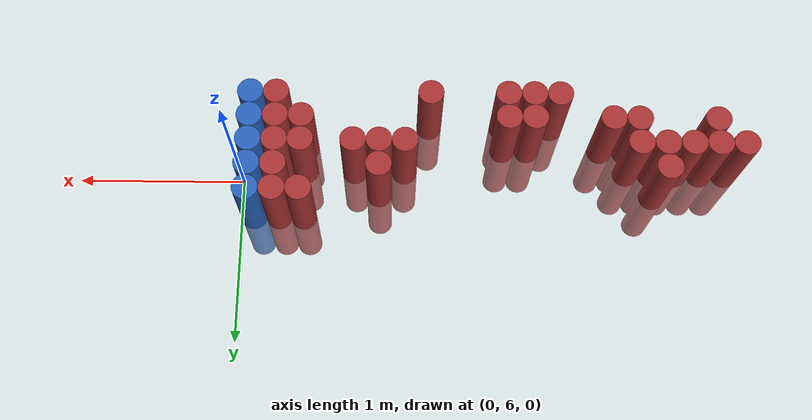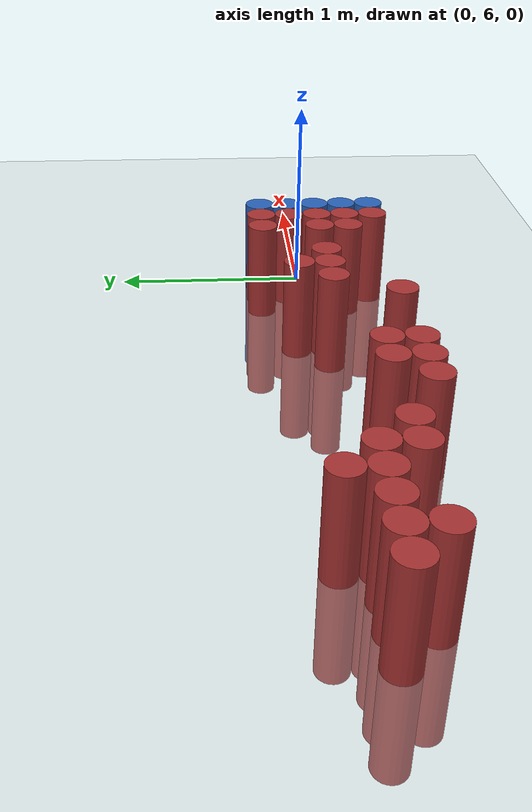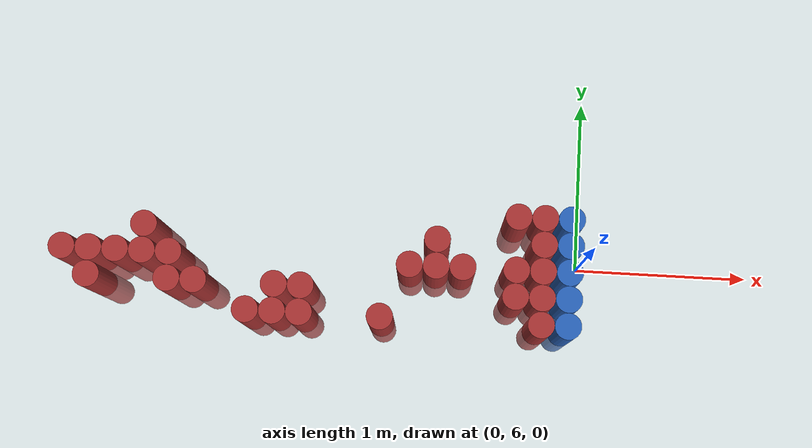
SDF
<sdf version="1.6">
 <world name="default">
  <model name="ground_plane">
   <static>1</static>
   <link name="link">
    <collision name="collision">
     <geometry><plane><normal>0 0 1</normal><size>100 100</size></plane></geometry>
     <surface><friction><ode><mu>100</mu><mu2>50</mu2></ode></friction></surface>
    </collision>
    <visual name="visual">
     <cast_shadows>0</cast_shadows>
     <geometry><plane><normal>0 0 1</normal><size>100 100</size></plane></geometry>
     <material>
      <script><uri>file://media/materials/scripts/gazebo.material</uri><name>Gazebo/Grey</name></script>
     </material>
    </visual>
   </link>
  </model>
  <model name="unit_cylinder_157">
   <static>1</static>
   <pose>-2.925000 5.925000 0.000000 0.000000 0.000000 0.000000</pose>
   <link name="link">
    <inertial>
     <mass>1</mass>
     <inertia><ixx>0.145833</ixx><ixy>0</ixy><ixz>0</ixz><iyy>0.145833</iyy><iyz>0</iyz><izz>0.125</izz></inertia>
    </inertial>
    <collision name="collision">
     <geometry><cylinder><radius>0.075000</radius><length>1</length></cylinder></geometry>
    </collision>
    <visual name="visual">
     <geometry><cylinder><radius>0.075000</radius><length>1</length></cylinder></geometry>
     <material>
      <ambient>0.648000 0.192000 0.192000 1</ambient>
      <diffuse>0.648000 0.192000 0.192000 1</diffuse>
     </material>
     <material>
      <script><name>Gazebo/Grey</name><uri>file://media/materials/scripts/gazebo.material</uri></script>
     </material>
    </visual>
    <sensor name="sensor_contact" type="contact"><contact><collision>collision</collision></contact></sensor>
   </link>
   <plugin filename="gz-sim-touchplugin-system" name="gz::sim::systems::TouchPlugin">
    <target>robot</target>
    <namespace>robot</namespace>
    <time>0.001</time>
    <enabled>true</enabled>
   </plugin>
  </model>
  <model name="unit_cylinder_160">
   <static>1</static>
   <pose>-2.775000 5.775000 0.000000 0.000000 0.000000 0.000000</pose>
   <link name="link">
    <inertial>
     <mass>1</mass>
     <inertia><ixx>0.145833</ixx><ixy>0</ixy><ixz>0</ixz><iyy>0.145833</iyy><iyz>0</iyz><izz>0.125</izz></inertia>
    </inertial>
    <collision name="collision">
     <geometry><cylinder><radius>0.075000</radius><length>1</length></cylinder></geometry>
    </collision>
    <visual name="visual">
     <geometry><cylinder><radius>0.075000</radius><length>1</length></cylinder></geometry>
     <material>
      <ambient>0.648000 0.192000 0.192000 1</ambient>
      <diffuse>0.648000 0.192000 0.192000 1</diffuse>
     </material>
     <material>
      <script><name>Gazebo/Grey</name><uri>file://media/materials/scripts/gazebo.material</uri></script>
     </material>
    </visual>
    <sensor name="sensor_contact" type="contact"><contact><collision>collision</collision></contact></sensor>
   </link>
   <plugin filename="gz-sim-touchplugin-system" name="gz::sim::systems::TouchPlugin">
    <target>robot</target>
    <namespace>robot</namespace>
    <time>0.001</time>
    <enabled>true</enabled>
   </plugin>
  </model>
  <model name="unit_cylinder_161">
   <static>1</static>
   <pose>-2.775000 5.925000 0.000000 0.000000 0.000000 0.000000</pose>
   <link name="link">
    <inertial>
     <mass>1</mass>
     <inertia><ixx>0.145833</ixx><ixy>0</ixy><ixz>0</ixz><iyy>0.145833</iyy><iyz>0</iyz><izz>0.125</izz></inertia>
    </inertial>
    <collision name="collision">
     <geometry><cylinder><radius>0.075000</radius><length>1</length></cylinder></geometry>
    </collision>
    <visual name="visual">
     <geometry><cylinder><radius>0.075000</radius><length>1</length></cylinder></geometry>
     <material>
      <ambient>0.648000 0.192000 0.192000 1</ambient>
      <diffuse>0.648000 0.192000 0.192000 1</diffuse>
     </material>
     <material>
      <script><name>Gazebo/Grey</name><uri>file://media/materials/scripts/gazebo.material</uri></script>
     </material>
    </visual>
    <sensor name="sensor_contact" type="contact"><contact><collision>collision</collision></contact></sensor>
   </link>
   <plugin filename="gz-sim-touchplugin-system" name="gz::sim::systems::TouchPlugin">
    <target>robot</target>
    <namespace>robot</namespace>
    <time>0.001</time>
    <enabled>true</enabled>
   </plugin>
  </model>
  <model name="unit_cylinder_166">
   <static>1</static>
   <pose>-2.625000 5.925000 0.000000 0.000000 0.000000 0.000000</pose>
   <link name="link">
    <inertial>
     <mass>1</mass>
     <inertia><ixx>0.145833</ixx><ixy>0</ixy><ixz>0</ixz><iyy>0.145833</iyy><iyz>0</iyz><izz>0.125</izz></inertia>
    </inertial>
    <collision name="collision">
     <geometry><cylinder><radius>0.075000</radius><length>1</length></cylinder></geometry>
    </collision>
    <visual name="visual">
     <geometry><cylinder><radius>0.075000</radius><length>1</length></cylinder></geometry>
     <material>
      <ambient>0.648000 0.192000 0.192000 1</ambient>
      <diffuse>0.648000 0.192000 0.192000 1</diffuse>
     </material>
     <material>
      <script><name>Gazebo/Grey</name><uri>file://media/materials/scripts/gazebo.material</uri></script>
     </material>
    </visual>
    <sensor name="sensor_contact" type="contact"><contact><collision>collision</collision></contact></sensor>
   </link>
   <plugin filename="gz-sim-touchplugin-system" name="gz::sim::systems::TouchPlugin">
    <target>robot</target>
    <namespace>robot</namespace>
    <time>0.001</time>
    <enabled>true</enabled>
   </plugin>
  </model>
  <model name="unit_cylinder_172">
   <static>1</static>
   <pose>-2.475000 5.925000 0.000000 0.000000 0.000000 0.000000</pose>
   <link name="link">
    <inertial>
     <mass>1</mass>
     <inertia><ixx>0.145833</ixx><ixy>0</ixy><ixz>0</ixz><iyy>0.145833</iyy><iyz>0</iyz><izz>0.125</izz></inertia>
    </inertial>
    <collision name="collision">
     <geometry><cylinder><radius>0.075000</radius><length>1</length></cylinder></geometry>
    </collision>
    <visual name="visual">
     <geometry><cylinder><radius>0.075000</radius><length>1</length></cylinder></geometry>
     <material>
      <ambient>0.648000 0.192000 0.192000 1</ambient>
      <diffuse>0.648000 0.192000 0.192000 1</diffuse>
     </material>
     <material>
      <script><name>Gazebo/Grey</name><uri>file://media/materials/scripts/gazebo.material</uri></script>
     </material>
    </visual>
    <sensor name="sensor_contact" type="contact"><contact><collision>collision</collision></contact></sensor>
   </link>
   <plugin filename="gz-sim-touchplugin-system" name="gz::sim::systems::TouchPlugin">
    <target>robot</target>
    <namespace>robot</namespace>
    <time>0.001</time>
    <enabled>true</enabled>
   </plugin>
  </model>
  <model name="unit_cylinder_173">
   <static>1</static>
   <pose>-2.475000 6.075000 0.000000 0.000000 0.000000 0.000000</pose>
   <link name="link">
    <inertial>
     <mass>1</mass>
     <inertia><ixx>0.145833</ixx><ixy>0</ixy><ixz>0</ixz><iyy>0.145833</iyy><iyz>0</iyz><izz>0.125</izz></inertia>
    </inertial>
    <collision name="collision">
     <geometry><cylinder><radius>0.075000</radius><length>1</length></cylinder></geometry>
    </collision>
    <visual name="visual">
     <geometry><cylinder><radius>0.075000</radius><length>1</length></cylinder></geometry>
     <material>
      <ambient>0.648000 0.192000 0.192000 1</ambient>
      <diffuse>0.648000 0.192000 0.192000 1</diffuse>
     </material>
     <material>
      <script><name>Gazebo/Grey</name><uri>file://media/materials/scripts/gazebo.material</uri></script>
     </material>
    </visual>
    <sensor name="sensor_contact" type="contact"><contact><collision>collision</collision></contact></sensor>
   </link>
   <plugin filename="gz-sim-touchplugin-system" name="gz::sim::systems::TouchPlugin">
    <target>robot</target>
    <namespace>robot</namespace>
    <time>0.001</time>
    <enabled>true</enabled>
   </plugin>
  </model>
  <model name="unit_cylinder_179">
   <static>1</static>
   <pose>-2.325000 5.775000 0.000000 0.000000 0.000000 0.000000</pose>
   <link name="link">
    <inertial>
     <mass>1</mass>
     <inertia><ixx>0.145833</ixx><ixy>0</ixy><ixz>0</ixz><iyy>0.145833</iyy><iyz>0</iyz><izz>0.125</izz></inertia>
    </inertial>
    <collision name="collision">
     <geometry><cylinder><radius>0.075000</radius><length>1</length></cylinder></geometry>
    </collision>
    <visual name="visual">
     <geometry><cylinder><radius>0.075000</radius><length>1</length></cylinder></geometry>
     <material>
      <ambient>0.648000 0.192000 0.192000 1</ambient>
      <diffuse>0.648000 0.192000 0.192000 1</diffuse>
     </material>
     <material>
      <script><name>Gazebo/Grey</name><uri>file://media/materials/scripts/gazebo.material</uri></script>
     </material>
    </visual>
    <sensor name="sensor_contact" type="contact"><contact><collision>collision</collision></contact></sensor>
   </link>
   <plugin filename="gz-sim-touchplugin-system" name="gz::sim::systems::TouchPlugin">
    <target>robot</target>
    <namespace>robot</namespace>
    <time>0.001</time>
    <enabled>true</enabled>
   </plugin>
  </model>
  <model name="unit_cylinder_180">
   <static>1</static>
   <pose>-2.325000 5.925000 0.000000 0.000000 0.000000 0.000000</pose>
   <link name="link">
    <inertial>
     <mass>1</mass>
     <inertia><ixx>0.145833</ixx><ixy>0</ixy><ixz>0</ixz><iyy>0.145833</iyy><iyz>0</iyz><izz>0.125</izz></inertia>
    </inertial>
    <collision name="collision">
     <geometry><cylinder><radius>0.075000</radius><length>1</length></cylinder></geometry>
    </collision>
    <visual name="visual">
     <geometry><cylinder><radius>0.075000</radius><length>1</length></cylinder></geometry>
     <material>
      <ambient>0.648000 0.192000 0.192000 1</ambient>
      <diffuse>0.648000 0.192000 0.192000 1</diffuse>
     </material>
     <material>
      <script><name>Gazebo/Grey</name><uri>file://media/materials/scripts/gazebo.material</uri></script>
     </material>
    </visual>
    <sensor name="sensor_contact" type="contact"><contact><collision>collision</collision></contact></sensor>
   </link>
   <plugin filename="gz-sim-touchplugin-system" name="gz::sim::systems::TouchPlugin">
    <target>robot</target>
    <namespace>robot</namespace>
    <time>0.001</time>
    <enabled>true</enabled>
   </plugin>
  </model>
  <model name="unit_cylinder_184">
   <static>1</static>
   <pose>-2.175000 5.775000 0.000000 0.000000 0.000000 0.000000</pose>
   <link name="link">
    <inertial>
     <mass>1</mass>
     <inertia><ixx>0.145833</ixx><ixy>0</ixy><ixz>0</ixz><iyy>0.145833</iyy><iyz>0</iyz><izz>0.125</izz></inertia>
    </inertial>
    <collision name="collision">
     <geometry><cylinder><radius>0.075000</radius><length>1</length></cylinder></geometry>
    </collision>
    <visual name="visual">
     <geometry><cylinder><radius>0.075000</radius><length>1</length></cylinder></geometry>
     <material>
      <ambient>0.648000 0.192000 0.192000 1</ambient>
      <diffuse>0.648000 0.192000 0.192000 1</diffuse>
     </material>
     <material>
      <script><name>Gazebo/Grey</name><uri>file://media/materials/scripts/gazebo.material</uri></script>
     </material>
    </visual>
    <sensor name="sensor_contact" type="contact"><contact><collision>collision</collision></contact></sensor>
   </link>
   <plugin filename="gz-sim-touchplugin-system" name="gz::sim::systems::TouchPlugin">
    <target>robot</target>
    <namespace>robot</namespace>
    <time>0.001</time>
    <enabled>true</enabled>
   </plugin>
  </model>
  <model name="unit_cylinder_193">
   <static>1</static>
   <pose>-1.875000 5.625000 0.000000 0.000000 0.000000 0.000000</pose>
   <link name="link">
    <inertial>
     <mass>1</mass>
     <inertia><ixx>0.145833</ixx><ixy>0</ixy><ixz>0</ixz><iyy>0.145833</iyy><iyz>0</iyz><izz>0.125</izz></inertia>
    </inertial>
    <collision name="collision">
     <geometry><cylinder><radius>0.075000</radius><length>1</length></cylinder></geometry>
    </collision>
    <visual name="visual">
     <geometry><cylinder><radius>0.075000</radius><length>1</length></cylinder></geometry>
     <material>
      <ambient>0.648000 0.192000 0.192000 1</ambient>
      <diffuse>0.648000 0.192000 0.192000 1</diffuse>
     </material>
     <material>
      <script><name>Gazebo/Grey</name><uri>file://media/materials/scripts/gazebo.material</uri></script>
     </material>
    </visual>
    <sensor name="sensor_contact" type="contact"><contact><collision>collision</collision></contact></sensor>
   </link>
   <plugin filename="gz-sim-touchplugin-system" name="gz::sim::systems::TouchPlugin">
    <target>robot</target>
    <namespace>robot</namespace>
    <time>0.001</time>
    <enabled>true</enabled>
   </plugin>
  </model>
  <model name="unit_cylinder_202">
   <static>1</static>
   <pose>-1.725000 5.625000 0.000000 0.000000 0.000000 0.000000</pose>
   <link name="link">
    <inertial>
     <mass>1</mass>
     <inertia><ixx>0.145833</ixx><ixy>0</ixy><ixz>0</ixz><iyy>0.145833</iyy><iyz>0</iyz><izz>0.125</izz></inertia>
    </inertial>
    <collision name="collision">
     <geometry><cylinder><radius>0.075000</radius><length>1</length></cylinder></geometry>
    </collision>
    <visual name="visual">
     <geometry><cylinder><radius>0.075000</radius><length>1</length></cylinder></geometry>
     <material>
      <ambient>0.648000 0.192000 0.192000 1</ambient>
      <diffuse>0.648000 0.192000 0.192000 1</diffuse>
     </material>
     <material>
      <script><name>Gazebo/Grey</name><uri>file://media/materials/scripts/gazebo.material</uri></script>
     </material>
    </visual>
    <sensor name="sensor_contact" type="contact"><contact><collision>collision</collision></contact></sensor>
   </link>
   <plugin filename="gz-sim-touchplugin-system" name="gz::sim::systems::TouchPlugin">
    <target>robot</target>
    <namespace>robot</namespace>
    <time>0.001</time>
    <enabled>true</enabled>
   </plugin>
  </model>
  <model name="unit_cylinder_203">
   <static>1</static>
   <pose>-1.725000 5.775000 0.000000 0.000000 0.000000 0.000000</pose>
   <link name="link">
    <inertial>
     <mass>1</mass>
     <inertia><ixx>0.145833</ixx><ixy>0</ixy><ixz>0</ixz><iyy>0.145833</iyy><iyz>0</iyz><izz>0.125</izz></inertia>
    </inertial>
    <collision name="collision">
     <geometry><cylinder><radius>0.075000</radius><length>1</length></cylinder></geometry>
    </collision>
    <visual name="visual">
     <geometry><cylinder><radius>0.075000</radius><length>1</length></cylinder></geometry>
     <material>
      <ambient>0.648000 0.192000 0.192000 1</ambient>
      <diffuse>0.648000 0.192000 0.192000 1</diffuse>
     </material>
     <material>
      <script><name>Gazebo/Grey</name><uri>file://media/materials/scripts/gazebo.material</uri></script>
     </material>
    </visual>
    <sensor name="sensor_contact" type="contact"><contact><collision>collision</collision></contact></sensor>
   </link>
   <plugin filename="gz-sim-touchplugin-system" name="gz::sim::systems::TouchPlugin">
    <target>robot</target>
    <namespace>robot</namespace>
    <time>0.001</time>
    <enabled>true</enabled>
   </plugin>
  </model>
  <model name="unit_cylinder_213">
   <static>1</static>
   <pose>-1.575000 5.625000 0.000000 0.000000 0.000000 0.000000</pose>
   <link name="link">
    <inertial>
     <mass>1</mass>
     <inertia><ixx>0.145833</ixx><ixy>0</ixy><ixz>0</ixz><iyy>0.145833</iyy><iyz>0</iyz><izz>0.125</izz></inertia>
    </inertial>
    <collision name="collision">
     <geometry><cylinder><radius>0.075000</radius><length>1</length></cylinder></geometry>
    </collision>
    <visual name="visual">
     <geometry><cylinder><radius>0.075000</radius><length>1</length></cylinder></geometry>
     <material>
      <ambient>0.648000 0.192000 0.192000 1</ambient>
      <diffuse>0.648000 0.192000 0.192000 1</diffuse>
     </material>
     <material>
      <script><name>Gazebo/Grey</name><uri>file://media/materials/scripts/gazebo.material</uri></script>
     </material>
    </visual>
    <sensor name="sensor_contact" type="contact"><contact><collision>collision</collision></contact></sensor>
   </link>
   <plugin filename="gz-sim-touchplugin-system" name="gz::sim::systems::TouchPlugin">
    <target>robot</target>
    <namespace>robot</namespace>
    <time>0.001</time>
    <enabled>true</enabled>
   </plugin>
  </model>
  <model name="unit_cylinder_214">
   <static>1</static>
   <pose>-1.575000 5.775000 0.000000 0.000000 0.000000 0.000000</pose>
   <link name="link">
    <inertial>
     <mass>1</mass>
     <inertia><ixx>0.145833</ixx><ixy>0</ixy><ixz>0</ixz><iyy>0.145833</iyy><iyz>0</iyz><izz>0.125</izz></inertia>
    </inertial>
    <collision name="collision">
     <geometry><cylinder><radius>0.075000</radius><length>1</length></cylinder></geometry>
    </collision>
    <visual name="visual">
     <geometry><cylinder><radius>0.075000</radius><length>1</length></cylinder></geometry>
     <material>
      <ambient>0.648000 0.192000 0.192000 1</ambient>
      <diffuse>0.648000 0.192000 0.192000 1</diffuse>
     </material>
     <material>
      <script><name>Gazebo/Grey</name><uri>file://media/materials/scripts/gazebo.material</uri></script>
     </material>
    </visual>
    <sensor name="sensor_contact" type="contact"><contact><collision>collision</collision></contact></sensor>
   </link>
   <plugin filename="gz-sim-touchplugin-system" name="gz::sim::systems::TouchPlugin">
    <target>robot</target>
    <namespace>robot</namespace>
    <time>0.001</time>
    <enabled>true</enabled>
   </plugin>
  </model>
  <model name="unit_cylinder_235">
   <static>1</static>
   <pose>-1.125000 5.625000 0.000000 0.000000 0.000000 0.000000</pose>
   <link name="link">
    <inertial>
     <mass>1</mass>
     <inertia><ixx>0.145833</ixx><ixy>0</ixy><ixz>0</ixz><iyy>0.145833</iyy><iyz>0</iyz><izz>0.125</izz></inertia>
    </inertial>
    <collision name="collision">
     <geometry><cylinder><radius>0.075000</radius><length>1</length></cylinder></geometry>
    </collision>
    <visual name="visual">
     <geometry><cylinder><radius>0.075000</radius><length>1</length></cylinder></geometry>
     <material>
      <ambient>0.648000 0.192000 0.192000 1</ambient>
      <diffuse>0.648000 0.192000 0.192000 1</diffuse>
     </material>
     <material>
      <script><name>Gazebo/Grey</name><uri>file://media/materials/scripts/gazebo.material</uri></script>
     </material>
    </visual>
    <sensor name="sensor_contact" type="contact"><contact><collision>collision</collision></contact></sensor>
   </link>
   <plugin filename="gz-sim-touchplugin-system" name="gz::sim::systems::TouchPlugin">
    <target>robot</target>
    <namespace>robot</namespace>
    <time>0.001</time>
    <enabled>true</enabled>
   </plugin>
  </model>
  <model name="unit_cylinder_244">
   <static>1</static>
   <pose>-0.975000 5.925000 0.000000 0.000000 0.000000 0.000000</pose>
   <link name="link">
    <inertial>
     <mass>1</mass>
     <inertia><ixx>0.145833</ixx><ixy>0</ixy><ixz>0</ixz><iyy>0.145833</iyy><iyz>0</iyz><izz>0.125</izz></inertia>
    </inertial>
    <collision name="collision">
     <geometry><cylinder><radius>0.075000</radius><length>1</length></cylinder></geometry>
    </collision>
    <visual name="visual">
     <geometry><cylinder><radius>0.075000</radius><length>1</length></cylinder></geometry>
     <material>
      <ambient>0.648000 0.192000 0.192000 1</ambient>
      <diffuse>0.648000 0.192000 0.192000 1</diffuse>
     </material>
     <material>
      <script><name>Gazebo/Grey</name><uri>file://media/materials/scripts/gazebo.material</uri></script>
     </material>
    </visual>
    <sensor name="sensor_contact" type="contact"><contact><collision>collision</collision></contact></sensor>
   </link>
   <plugin filename="gz-sim-touchplugin-system" name="gz::sim::systems::TouchPlugin">
    <target>robot</target>
    <namespace>robot</namespace>
    <time>0.001</time>
    <enabled>true</enabled>
   </plugin>
  </model>
  <model name="unit_cylinder_253">
   <static>1</static>
   <pose>-0.825000 5.925000 0.000000 0.000000 0.000000 0.000000</pose>
   <link name="link">
    <inertial>
     <mass>1</mass>
     <inertia><ixx>0.145833</ixx><ixy>0</ixy><ixz>0</ixz><iyy>0.145833</iyy><iyz>0</iyz><izz>0.125</izz></inertia>
    </inertial>
    <collision name="collision">
     <geometry><cylinder><radius>0.075000</radius><length>1</length></cylinder></geometry>
    </collision>
    <visual name="visual">
     <geometry><cylinder><radius>0.075000</radius><length>1</length></cylinder></geometry>
     <material>
      <ambient>0.648000 0.192000 0.192000 1</ambient>
      <diffuse>0.648000 0.192000 0.192000 1</diffuse>
     </material>
     <material>
      <script><name>Gazebo/Grey</name><uri>file://media/materials/scripts/gazebo.material</uri></script>
     </material>
    </visual>
    <sensor name="sensor_contact" type="contact"><contact><collision>collision</collision></contact></sensor>
   </link>
   <plugin filename="gz-sim-touchplugin-system" name="gz::sim::systems::TouchPlugin">
    <target>robot</target>
    <namespace>robot</namespace>
    <time>0.001</time>
    <enabled>true</enabled>
   </plugin>
  </model>
  <model name="unit_cylinder_254">
   <static>1</static>
   <pose>-0.825000 6.075000 0.000000 0.000000 0.000000 0.000000</pose>
   <link name="link">
    <inertial>
     <mass>1</mass>
     <inertia><ixx>0.145833</ixx><ixy>0</ixy><ixz>0</ixz><iyy>0.145833</iyy><iyz>0</iyz><izz>0.125</izz></inertia>
    </inertial>
    <collision name="collision">
     <geometry><cylinder><radius>0.075000</radius><length>1</length></cylinder></geometry>
    </collision>
    <visual name="visual">
     <geometry><cylinder><radius>0.075000</radius><length>1</length></cylinder></geometry>
     <material>
      <ambient>0.648000 0.192000 0.192000 1</ambient>
      <diffuse>0.648000 0.192000 0.192000 1</diffuse>
     </material>
     <material>
      <script><name>Gazebo/Grey</name><uri>file://media/materials/scripts/gazebo.material</uri></script>
     </material>
    </visual>
    <sensor name="sensor_contact" type="contact"><contact><collision>collision</collision></contact></sensor>
   </link>
   <plugin filename="gz-sim-touchplugin-system" name="gz::sim::systems::TouchPlugin">
    <target>robot</target>
    <namespace>robot</namespace>
    <time>0.001</time>
    <enabled>true</enabled>
   </plugin>
  </model>
  <model name="unit_cylinder_260">
   <static>1</static>
   <pose>-0.675000 5.925000 0.000000 0.000000 0.000000 0.000000</pose>
   <link name="link">
    <inertial>
     <mass>1</mass>
     <inertia><ixx>0.145833</ixx><ixy>0</ixy><ixz>0</ixz><iyy>0.145833</iyy><iyz>0</iyz><izz>0.125</izz></inertia>
    </inertial>
    <collision name="collision">
     <geometry><cylinder><radius>0.075000</radius><length>1</length></cylinder></geometry>
    </collision>
    <visual name="visual">
     <geometry><cylinder><radius>0.075000</radius><length>1</length></cylinder></geometry>
     <material>
      <ambient>0.648000 0.192000 0.192000 1</ambient>
      <diffuse>0.648000 0.192000 0.192000 1</diffuse>
     </material>
     <material>
      <script><name>Gazebo/Grey</name><uri>file://media/materials/scripts/gazebo.material</uri></script>
     </material>
    </visual>
    <sensor name="sensor_contact" type="contact"><contact><collision>collision</collision></contact></sensor>
   </link>
   <plugin filename="gz-sim-touchplugin-system" name="gz::sim::systems::TouchPlugin">
    <target>robot</target>
    <namespace>robot</namespace>
    <time>0.001</time>
    <enabled>true</enabled>
   </plugin>
  </model>
  <model name="unit_cylinder_269">
   <static>1</static>
   <pose>-0.375000 5.775000 0.000000 0.000000 0.000000 0.000000</pose>
   <link name="link">
    <inertial>
     <mass>1</mass>
     <inertia><ixx>0.145833</ixx><ixy>0</ixy><ixz>0</ixz><iyy>0.145833</iyy><iyz>0</iyz><izz>0.125</izz></inertia>
    </inertial>
    <collision name="collision">
     <geometry><cylinder><radius>0.075000</radius><length>1</length></cylinder></geometry>
    </collision>
    <visual name="visual">
     <geometry><cylinder><radius>0.075000</radius><length>1</length></cylinder></geometry>
     <material>
      <ambient>0.648000 0.192000 0.192000 1</ambient>
      <diffuse>0.648000 0.192000 0.192000 1</diffuse>
     </material>
     <material>
      <script><name>Gazebo/Grey</name><uri>file://media/materials/scripts/gazebo.material</uri></script>
     </material>
    </visual>
    <sensor name="sensor_contact" type="contact"><contact><collision>collision</collision></contact></sensor>
   </link>
   <plugin filename="gz-sim-touchplugin-system" name="gz::sim::systems::TouchPlugin">
    <target>robot</target>
    <namespace>robot</namespace>
    <time>0.001</time>
    <enabled>true</enabled>
   </plugin>
  </model>
  <model name="unit_cylinder_270">
   <static>1</static>
   <pose>-0.375000 5.925000 0.000000 0.000000 0.000000 0.000000</pose>
   <link name="link">
    <inertial>
     <mass>1</mass>
     <inertia><ixx>0.145833</ixx><ixy>0</ixy><ixz>0</ixz><iyy>0.145833</iyy><iyz>0</iyz><izz>0.125</izz></inertia>
    </inertial>
    <collision name="collision">
     <geometry><cylinder><radius>0.075000</radius><length>1</length></cylinder></geometry>
    </collision>
    <visual name="visual">
     <geometry><cylinder><radius>0.075000</radius><length>1</length></cylinder></geometry>
     <material>
      <ambient>0.648000 0.192000 0.192000 1</ambient>
      <diffuse>0.648000 0.192000 0.192000 1</diffuse>
     </material>
     <material>
      <script><name>Gazebo/Grey</name><uri>file://media/materials/scripts/gazebo.material</uri></script>
     </material>
    </visual>
    <sensor name="sensor_contact" type="contact"><contact><collision>collision</collision></contact></sensor>
   </link>
   <plugin filename="gz-sim-touchplugin-system" name="gz::sim::systems::TouchPlugin">
    <target>robot</target>
    <namespace>robot</namespace>
    <time>0.001</time>
    <enabled>true</enabled>
   </plugin>
  </model>
  <model name="unit_cylinder_271">
   <static>1</static>
   <pose>-0.375000 6.225000 0.000000 0.000000 0.000000 0.000000</pose>
   <link name="link">
    <inertial>
     <mass>1</mass>
     <inertia><ixx>0.145833</ixx><ixy>0</ixy><ixz>0</ixz><iyy>0.145833</iyy><iyz>0</iyz><izz>0.125</izz></inertia>
    </inertial>
    <collision name="collision">
     <geometry><cylinder><radius>0.075000</radius><length>1</length></cylinder></geometry>
    </collision>
    <visual name="visual">
     <geometry><cylinder><radius>0.075000</radius><length>1</length></cylinder></geometry>
     <material>
      <ambient>0.648000 0.192000 0.192000 1</ambient>
      <diffuse>0.648000 0.192000 0.192000 1</diffuse>
     </material>
     <material>
      <script><name>Gazebo/Grey</name><uri>file://media/materials/scripts/gazebo.material</uri></script>
     </material>
    </visual>
    <sensor name="sensor_contact" type="contact"><contact><collision>collision</collision></contact></sensor>
   </link>
   <plugin filename="gz-sim-touchplugin-system" name="gz::sim::systems::TouchPlugin">
    <target>robot</target>
    <namespace>robot</namespace>
    <time>0.001</time>
    <enabled>true</enabled>
   </plugin>
  </model>
  <model name="unit_cylinder_277">
   <static>1</static>
   <pose>-0.225000 5.625000 0.000000 0.000000 0.000000 0.000000</pose>
   <link name="link">
    <inertial>
     <mass>1</mass>
     <inertia><ixx>0.145833</ixx><ixy>0</ixy><ixz>0</ixz><iyy>0.145833</iyy><iyz>0</iyz><izz>0.125</izz></inertia>
    </inertial>
    <collision name="collision">
     <geometry><cylinder><radius>0.075000</radius><length>1</length></cylinder></geometry>
    </collision>
    <visual name="visual">
     <geometry><cylinder><radius>0.075000</radius><length>1</length></cylinder></geometry>
     <material>
      <ambient>0.648000 0.192000 0.192000 1</ambient>
      <diffuse>0.648000 0.192000 0.192000 1</diffuse>
     </material>
     <material>
      <script><name>Gazebo/Grey</name><uri>file://media/materials/scripts/gazebo.material</uri></script>
     </material>
    </visual>
    <sensor name="sensor_contact" type="contact"><contact><collision>collision</collision></contact></sensor>
   </link>
   <plugin filename="gz-sim-touchplugin-system" name="gz::sim::systems::TouchPlugin">
    <target>robot</target>
    <namespace>robot</namespace>
    <time>0.001</time>
    <enabled>true</enabled>
   </plugin>
  </model>
  <model name="unit_cylinder_278">
   <static>1</static>
   <pose>-0.225000 5.775000 0.000000 0.000000 0.000000 0.000000</pose>
   <link name="link">
    <inertial>
     <mass>1</mass>
     <inertia><ixx>0.145833</ixx><ixy>0</ixy><ixz>0</ixz><iyy>0.145833</iyy><iyz>0</iyz><izz>0.125</izz></inertia>
    </inertial>
    <collision name="collision">
     <geometry><cylinder><radius>0.075000</radius><length>1</length></cylinder></geometry>
    </collision>
    <visual name="visual">
     <geometry><cylinder><radius>0.075000</radius><length>1</length></cylinder></geometry>
     <material>
      <ambient>0.648000 0.192000 0.192000 1</ambient>
      <diffuse>0.648000 0.192000 0.192000 1</diffuse>
     </material>
     <material>
      <script><name>Gazebo/Grey</name><uri>file://media/materials/scripts/gazebo.material</uri></script>
     </material>
    </visual>
    <sensor name="sensor_contact" type="contact"><contact><collision>collision</collision></contact></sensor>
   </link>
   <plugin filename="gz-sim-touchplugin-system" name="gz::sim::systems::TouchPlugin">
    <target>robot</target>
    <namespace>robot</namespace>
    <time>0.001</time>
    <enabled>true</enabled>
   </plugin>
  </model>
  <model name="unit_cylinder_279">
   <static>1</static>
   <pose>-0.225000 5.925000 0.000000 0.000000 0.000000 0.000000</pose>
   <link name="link">
    <inertial>
     <mass>1</mass>
     <inertia><ixx>0.145833</ixx><ixy>0</ixy><ixz>0</ixz><iyy>0.145833</iyy><iyz>0</iyz><izz>0.125</izz></inertia>
    </inertial>
    <collision name="collision">
     <geometry><cylinder><radius>0.075000</radius><length>1</length></cylinder></geometry>
    </collision>
    <visual name="visual">
     <geometry><cylinder><radius>0.075000</radius><length>1</length></cylinder></geometry>
     <material>
      <ambient>0.648000 0.192000 0.192000 1</ambient>
      <diffuse>0.648000 0.192000 0.192000 1</diffuse>
     </material>
     <material>
      <script><name>Gazebo/Grey</name><uri>file://media/materials/scripts/gazebo.material</uri></script>
     </material>
    </visual>
    <sensor name="sensor_contact" type="contact"><contact><collision>collision</collision></contact></sensor>
   </link>
   <plugin filename="gz-sim-touchplugin-system" name="gz::sim::systems::TouchPlugin">
    <target>robot</target>
    <namespace>robot</namespace>
    <time>0.001</time>
    <enabled>true</enabled>
   </plugin>
  </model>
  <model name="unit_cylinder_280">
   <static>1</static>
   <pose>-0.225000 6.075000 0.000000 0.000000 0.000000 0.000000</pose>
   <link name="link">
    <inertial>
     <mass>1</mass>
     <inertia><ixx>0.145833</ixx><ixy>0</ixy><ixz>0</ixz><iyy>0.145833</iyy><iyz>0</iyz><izz>0.125</izz></inertia>
    </inertial>
    <collision name="collision">
     <geometry><cylinder><radius>0.075000</radius><length>1</length></cylinder></geometry>
    </collision>
    <visual name="visual">
     <geometry><cylinder><radius>0.075000</radius><length>1</length></cylinder></geometry>
     <material>
      <ambient>0.648000 0.192000 0.192000 1</ambient>
      <diffuse>0.648000 0.192000 0.192000 1</diffuse>
     </material>
     <material>
      <script><name>Gazebo/Grey</name><uri>file://media/materials/scripts/gazebo.material</uri></script>
     </material>
    </visual>
    <sensor name="sensor_contact" type="contact"><contact><collision>collision</collision></contact></sensor>
   </link>
   <plugin filename="gz-sim-touchplugin-system" name="gz::sim::systems::TouchPlugin">
    <target>robot</target>
    <namespace>robot</namespace>
    <time>0.001</time>
    <enabled>true</enabled>
   </plugin>
  </model>
  <model name="unit_cylinder_281">
   <static>1</static>
   <pose>-0.225000 6.225000 0.000000 0.000000 0.000000 0.000000</pose>
   <link name="link">
    <inertial>
     <mass>1</mass>
     <inertia><ixx>0.145833</ixx><ixy>0</ixy><ixz>0</ixz><iyy>0.145833</iyy><iyz>0</iyz><izz>0.125</izz></inertia>
    </inertial>
    <collision name="collision">
     <geometry><cylinder><radius>0.075000</radius><length>1</length></cylinder></geometry>
    </collision>
    <visual name="visual">
     <geometry><cylinder><radius>0.075000</radius><length>1</length></cylinder></geometry>
     <material>
      <ambient>0.648000 0.192000 0.192000 1</ambient>
      <diffuse>0.648000 0.192000 0.192000 1</diffuse>
     </material>
     <material>
      <script><name>Gazebo/Grey</name><uri>file://media/materials/scripts/gazebo.material</uri></script>
     </material>
    </visual>
    <sensor name="sensor_contact" type="contact"><contact><collision>collision</collision></contact></sensor>
   </link>
   <plugin filename="gz-sim-touchplugin-system" name="gz::sim::systems::TouchPlugin">
    <target>robot</target>
    <namespace>robot</namespace>
    <time>0.001</time>
    <enabled>true</enabled>
   </plugin>
  </model>
  <model name="unit_cylinder_298">
   <static>1</static>
   <pose>-0.075000 5.625000 0.000000 0.000000 0.000000 0.000000</pose>
   <link name="link">
    <inertial>
     <mass>1</mass>
     <inertia><ixx>0.145833</ixx><ixy>0</ixy><ixz>0</ixz><iyy>0.145833</iyy><iyz>0</iyz><izz>0.125</izz></inertia>
    </inertial>
    <collision name="collision">
     <geometry><cylinder><radius>0.075000</radius><length>1</length></cylinder></geometry>
    </collision>
    <visual name="visual">
     <geometry><cylinder><radius>0.075000</radius><length>1</length></cylinder></geometry>
     <material>
      <ambient>0.152000 0.379000 0.720000 1</ambient>
      <diffuse>0.152000 0.379000 0.720000 1</diffuse>
     </material>
     <material>
      <script><name>Gazebo/Grey</name><uri>file://media/materials/scripts/gazebo.material</uri></script>
     </material>
    </visual>
    <sensor name="sensor_contact" type="contact"><contact><collision>collision</collision></contact></sensor>
   </link>
   <plugin filename="gz-sim-touchplugin-system" name="gz::sim::systems::TouchPlugin">
    <target>robot</target>
    <namespace>robot</namespace>
    <time>0.001</time>
    <enabled>true</enabled>
   </plugin>
  </model>
  <model name="unit_cylinder_299">
   <static>1</static>
   <pose>-0.075000 5.775000 0.000000 0.000000 0.000000 0.000000</pose>
   <link name="link">
    <inertial>
     <mass>1</mass>
     <inertia><ixx>0.145833</ixx><ixy>0</ixy><ixz>0</ixz><iyy>0.145833</iyy><iyz>0</iyz><izz>0.125</izz></inertia>
    </inertial>
    <collision name="collision">
     <geometry><cylinder><radius>0.075000</radius><length>1</length></cylinder></geometry>
    </collision>
    <visual name="visual">
     <geometry><cylinder><radius>0.075000</radius><length>1</length></cylinder></geometry>
     <material>
      <ambient>0.152000 0.379000 0.720000 1</ambient>
      <diffuse>0.152000 0.379000 0.720000 1</diffuse>
     </material>
     <material>
      <script><name>Gazebo/Grey</name><uri>file://media/materials/scripts/gazebo.material</uri></script>
     </material>
    </visual>
    <sensor name="sensor_contact" type="contact"><contact><collision>collision</collision></contact></sensor>
   </link>
   <plugin filename="gz-sim-touchplugin-system" name="gz::sim::systems::TouchPlugin">
    <target>robot</target>
    <namespace>robot</namespace>
    <time>0.001</time>
    <enabled>true</enabled>
   </plugin>
  </model>
  <model name="unit_cylinder_300">
   <static>1</static>
   <pose>-0.075000 5.925000 0.000000 0.000000 0.000000 0.000000</pose>
   <link name="link">
    <inertial>
     <mass>1</mass>
     <inertia><ixx>0.145833</ixx><ixy>0</ixy><ixz>0</ixz><iyy>0.145833</iyy><iyz>0</iyz><izz>0.125</izz></inertia>
    </inertial>
    <collision name="collision">
     <geometry><cylinder><radius>0.075000</radius><length>1</length></cylinder></geometry>
    </collision>
    <visual name="visual">
     <geometry><cylinder><radius>0.075000</radius><length>1</length></cylinder></geometry>
     <material>
      <ambient>0.152000 0.379000 0.720000 1</ambient>
      <diffuse>0.152000 0.379000 0.720000 1</diffuse>
     </material>
     <material>
      <script><name>Gazebo/Grey</name><uri>file://media/materials/scripts/gazebo.material</uri></script>
     </material>
    </visual>
    <sensor name="sensor_contact" type="contact"><contact><collision>collision</collision></contact></sensor>
   </link>
   <plugin filename="gz-sim-touchplugin-system" name="gz::sim::systems::TouchPlugin">
    <target>robot</target>
    <namespace>robot</namespace>
    <time>0.001</time>
    <enabled>true</enabled>
   </plugin>
  </model>
  <model name="unit_cylinder_301">
   <static>1</static>
   <pose>-0.075000 6.075000 0.000000 0.000000 0.000000 0.000000</pose>
   <link name="link">
    <inertial>
     <mass>1</mass>
     <inertia><ixx>0.145833</ixx><ixy>0</ixy><ixz>0</ixz><iyy>0.145833</iyy><iyz>0</iyz><izz>0.125</izz></inertia>
    </inertial>
    <collision name="collision">
     <geometry><cylinder><radius>0.075000</radius><length>1</length></cylinder></geometry>
    </collision>
    <visual name="visual">
     <geometry><cylinder><radius>0.075000</radius><length>1</length></cylinder></geometry>
     <material>
      <ambient>0.152000 0.379000 0.720000 1</ambient>
      <diffuse>0.152000 0.379000 0.720000 1</diffuse>
     </material>
     <material>
      <script><name>Gazebo/Grey</name><uri>file://media/materials/scripts/gazebo.material</uri></script>
     </material>
    </visual>
    <sensor name="sensor_contact" type="contact"><contact><collision>collision</collision></contact></sensor>
   </link>
   <plugin filename="gz-sim-touchplugin-system" name="gz::sim::systems::TouchPlugin">
    <target>robot</target>
    <namespace>robot</namespace>
    <time>0.001</time>
    <enabled>true</enabled>
   </plugin>
  </model>
  <model name="unit_cylinder_302">
   <static>1</static>
   <pose>-0.075000 6.225000 0.000000 0.000000 0.000000 0.000000</pose>
   <link name="link">
    <inertial>
     <mass>1</mass>
     <inertia><ixx>0.145833</ixx><ixy>0</ixy><ixz>0</ixz><iyy>0.145833</iyy><iyz>0</iyz><izz>0.125</izz></inertia>
    </inertial>
    <collision name="collision">
     <geometry><cylinder><radius>0.075000</radius><length>1</length></cylinder></geometry>
    </collision>
    <visual name="visual">
     <geometry><cylinder><radius>0.075000</radius><length>1</length></cylinder></geometry>
     <material>
      <ambient>0.152000 0.379000 0.720000 1</ambient>
      <diffuse>0.152000 0.379000 0.720000 1</diffuse>
     </material>
     <material>
      <script><name>Gazebo/Grey</name><uri>file://media/materials/scripts/gazebo.material</uri></script>
     </material>
    </visual>
    <sensor name="sensor_contact" type="contact"><contact><collision>collision</collision></contact></sensor>
   </link>
   <plugin filename="gz-sim-touchplugin-system" name="gz::sim::systems::TouchPlugin">
    <target>robot</target>
    <namespace>robot</namespace>
    <time>0.001</time>
    <enabled>true</enabled>
   </plugin>
  </model>
 </world>
</sdf>
